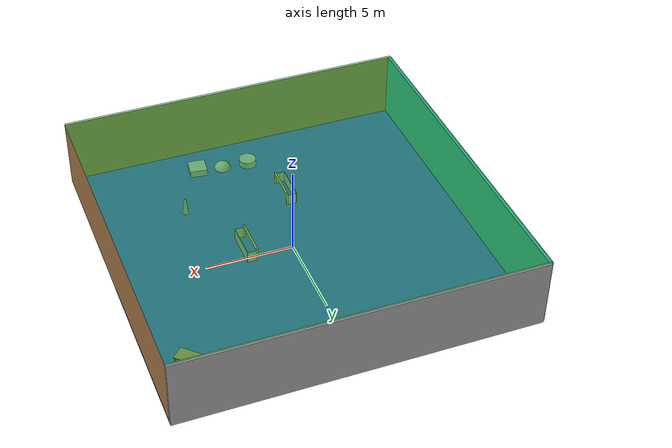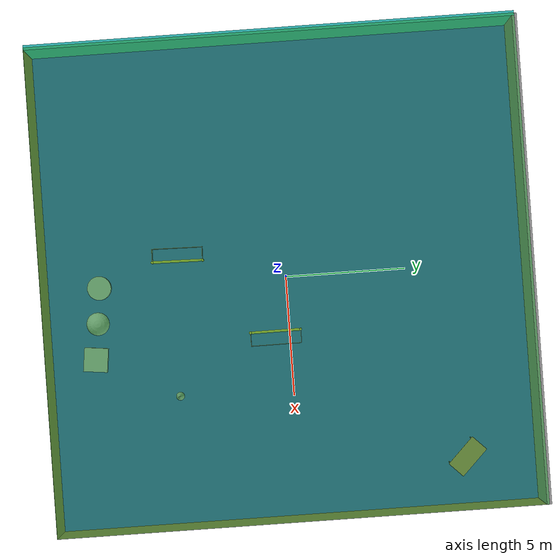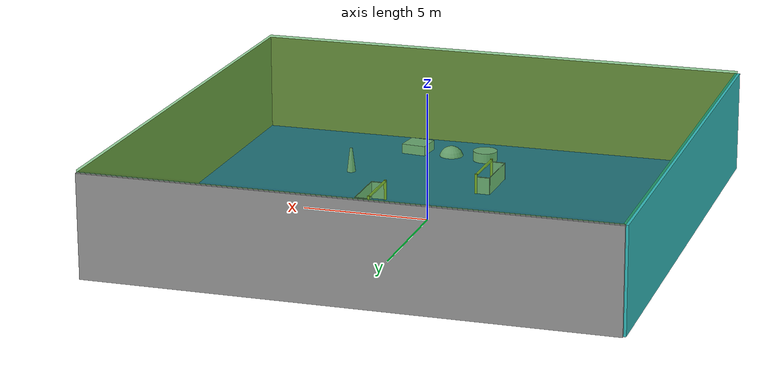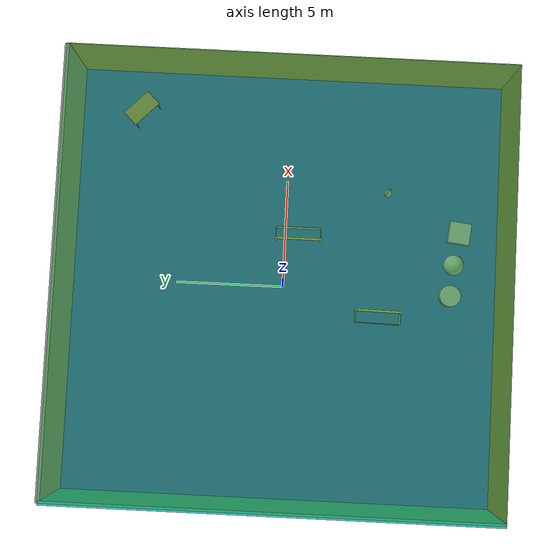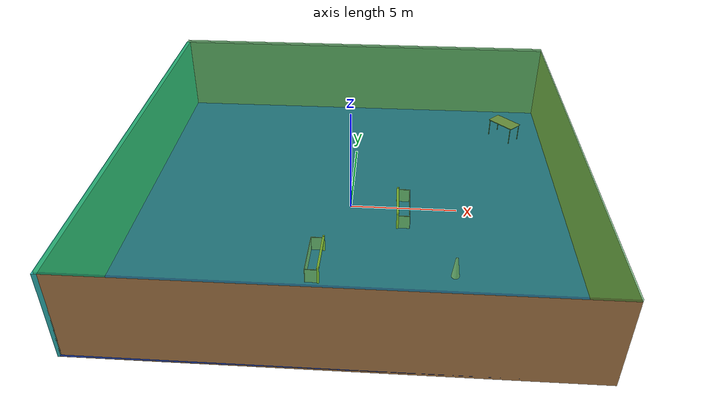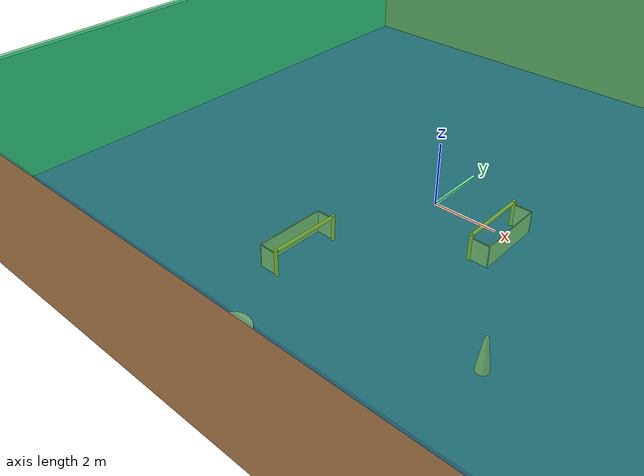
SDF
<sdf version="1.4">
 <world name="default">
  <physics type="ode">
   <max_step_size>0.001</max_step_size>
   <real_time_factor>1</real_time_factor>
   <real_time_update_rate>1000</real_time_update_rate>
   <gravity>0 0 -9.8</gravity>
  </physics>
  <scene><ambient>0.4 0.4 0.4 1</ambient><background>0.7 0.7 0.7 1</background><shadows>1</shadows></scene>
  <model name="Surrounding">
   <static>1</static>
   <link name="Ceiling">
    <collision name="Ceiling_Collision"><geometry><box><size>20 20 0.1</size></box></geometry></collision>
    <visual name="Ceiling_Visual">
     <geometry><box><size>20 20 0.1</size></box></geometry>
     <material>
      <script><uri>file://media/materials/scripts/gazebo.material</uri><name>Gazebo/GreenTransparent</name></script>
     </material>
    </visual>
    <pose>0 0 4.05 0 0 0</pose>
   </link>
   <link name="Wall_South">
    <collision name="Wall_South_Collision">
     <geometry><box><size>20 0 4</size></box></geometry>
     <pose>0 0 2 0 -0 0</pose>
    </collision>
    <visual name="Wall_South_Visual">
     <pose>0 0 2 0 -0 0</pose>
     <geometry><box><size>20 0 4</size></box></geometry>
     <material>
      <script><uri>file://media/materials/scripts/gazebo.material</uri><name>Gazebo/WoodFloor</name></script>
     </material>
    </visual>
    <velocity_decay><linear>0</linear><angular>0</angular></velocity_decay>
    <pose>0 -10 0 0 -0 0</pose>
   </link>
   <link name="Wall_East">
    <collision name="Wall_21_Collision">
     <geometry><box><size>20 0 4</size></box></geometry>
     <pose>0 0 2 0 -0 0</pose>
    </collision>
    <visual name="Wall_21_Visual">
     <pose>0 0 2 0 -0 0</pose>
     <geometry><box><size>20 0 4</size></box></geometry>
     <material>
      <script><uri>file://media/materials/scripts/gazebo.material</uri><name>Gazebo/WoodPallet</name></script>
     </material>
    </visual>
    <velocity_decay><linear>0</linear><angular>0</angular></velocity_decay>
    <pose>10 0 0 0 -0 1.5708</pose>
   </link>
   <link name="Wall_North">
    <collision name="Wall_22_Collision">
     <geometry><box><size>20 0.2 4</size></box></geometry>
     <pose>0 0 2 0 -0 0</pose>
    </collision>
    <visual name="Wall_22_Visual">
     <pose>0 0 2 0 -0 0</pose>
     <geometry><box><size>20 0.2 4</size></box></geometry>
     <material>
      <script><uri>file://media/materials/scripts/gazebo.material</uri><name>Gazebo/GreyGradientSky</name></script>
     </material>
    </visual>
    <velocity_decay><linear>0</linear><angular>0</angular></velocity_decay>
    <pose>0 10 0 0 -0 0</pose>
   </link>
   <link name="Wall_West">
    <collision name="Wall_23_Collision">
     <geometry><box><size>20 0.2 4</size></box></geometry>
     <pose>0 0 2 0 -0 0</pose>
    </collision>
    <visual name="Wall_23_Visual">
     <pose>0 0 2 0 -0 0</pose>
     <geometry><box><size>20 0.2 4</size></box></geometry>
     <material>
      <script>
       <uri>file://media/materials/scripts/gazebo.material</uri>
       <name>Gazebo/TurquoiseGlowOutline</name>
      </script>
     </material>
    </visual>
    <velocity_decay><linear>0</linear><angular>0</angular></velocity_decay>
    <pose>-10 0 0 0 0 -1.5708</pose>
   </link>
   <link name="Ground_link">
    <collision name="collision">
     <pose>0 0 .05 0 -0 0</pose>
     <geometry><box><size>20 20 0.1</size></box></geometry>
    </collision>
    <visual name="visual">
     <pose>0 0 .05 0 -0 0</pose>
     <geometry><box><size>20 20 0.1</size></box></geometry>
     <material>
      <script><uri>file://media/materials/scripts/gazebo.material</uri><name>Gazebo/BlueGlow</name></script>
     </material>
    </visual>
   </link>
   <static>1</static>
  </model>
  <spherical_coordinates>
   <surface_model>EARTH_WGS84</surface_model>
   <latitude_deg>0</latitude_deg>
   <longitude_deg>0</longitude_deg>
   <elevation>0</elevation>
   <heading_deg>0</heading_deg>
  </spherical_coordinates>
  <light name="lightball_0" type="diffuse">
   <diffuse>0.8 0.8 0.8 1</diffuse>
   <specular>0.2 0.2 0.2 1</specular>
   <attenuation>
    <range>100</range>
    <constant>0.7</constant>
    <linear>0.01</linear>
    <quadratic>0.001</quadratic>
   </attenuation>
   <direction>-0.5 0.1 -0.9</direction>
   <pose>-7.79787628408 4.67780269743 1.11923340378 0 0 0</pose>
  </light>
  <light name="lightball_1" type="diffuse">
   <diffuse>0.8 0.8 0.8 1</diffuse>
   <specular>0.2 0.2 0.2 1</specular>
   <attenuation>
    <range>100</range>
    <constant>0.7</constant>
    <linear>0.01</linear>
    <quadratic>0.001</quadratic>
   </attenuation>
   <direction>-0.5 0.1 -0.9</direction>
   <pose>0.0884077954945 -4.2075093108 3.29765543759 0 0 0</pose>
  </light>
  <light name="lightball_2" type="diffuse">
   <diffuse>0.8 0.8 0.8 1</diffuse>
   <specular>0.2 0.2 0.2 1</specular>
   <attenuation>
    <range>100</range>
    <constant>0.7</constant>
    <linear>0.01</linear>
    <quadratic>0.001</quadratic>
   </attenuation>
   <direction>-0.5 0.1 -0.9</direction>
   <pose>5.44001211245 5.61554661523 2.75877569489 0 0 0</pose>
  </light>
  <include>
   <uri>model://robocup_3Dsim_goal</uri>
   <pose>-0.965005388781 -4.48177311397 0 0 0 3.1224207261</pose>
  </include>
  <include>
   <uri>model://textured_shapes</uri>
   <pose>1.4162486988 -8.01059777534 0 0 0 1.45540942879</pose>
  </include>
  <include>
   <uri>model://robocup_3Dsim_goal</uri>
   <pose>2.23100708539 -0.596266643535 0 0 0 0.00416603543983</pose>
  </include>
  <include>
   <uri>model://construction_cone</uri>
   <pose>4.68303427122 -4.7693801339 0 0 0 2.11971568562</pose>
  </include>
  <include><uri>model://table</uri><pose>8.0117233527 7.02489751516 0 0 0 2.36020128633</pose></include>
 </world>
</sdf>

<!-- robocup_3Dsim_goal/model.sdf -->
<sdf version="1.5">
  <model name="robocup_3d_goal">
    <static>true</static>
    <link name="left_post">
      <pose>0 1.05 0.45 0 0 0</pose>
      <collision name="collision">
        <geometry>
          <cylinder>
            <radius>0.05</radius>
            <length>0.9</length>
          </cylinder>
        </geometry>
      </collision>
      <visual name="visual">
        <geometry>
          <cylinder>
            <radius>0.05</radius>
            <length>0.9</length>
          </cylinder>
        </geometry>
        <material>
          <script>
            <uri>file://media/materials/scripts/gazebo.material</uri>
            <name>Gazebo/ZincYellow</name>
          </script>
        </material>
      </visual>
    </link>
    <link name="left_support_horiz_lower">
      <pose>0.30 1.05 0.01 0 0 0</pose>
      <collision name="collision">
        <geometry>
          <box>
            <size>0.50 0.02 0.02</size>
          </box>
        </geometry>
      </collision>
      <visual name="visual">
        <geometry>
          <box>
            <size>0.50 0.02 0.02</size>
          </box>
        </geometry>
        <material>
          <script>
            <uri>file://media/materials/scripts/gazebo.material</uri>
            <name>Gazebo/White</name>
          </script>
        </material>
      </visual>
    </link>
    <link name="left_support_horiz_upper">
      <pose>0.30 1.05 0.79 0 0 0</pose>
      <collision name="collision">
        <geometry>
          <box>
            <size>0.50 0.02 0.02</size>
          </box>
        </geometry>
      </collision>
      <visual name="visual">
        <geometry>
          <box>
            <size>0.50 0.02 0.02</size>
          </box>
        </geometry>
        <material>
          <script>
            <uri>file://media/materials/scripts/gazebo.material</uri>
            <name>Gazebo/White</name>
          </script>
        </material>
      </visual>
    </link>
    <link name="left_support_vertical">
      <pose>0.56 1.05 0.4 0 1.5708 0</pose>
      <collision name="collision">
        <geometry>
          <box>
            <size>0.80 0.02 0.02</size>
          </box>
        </geometry>
      </collision>
      <visual name="visual">
        <geometry>
          <box>
            <size>0.80 0.02 0.02</size>
          </box>
        </geometry>
        <material>
          <script>
            <uri>file://media/materials/scripts/gazebo.material</uri>
            <name>Gazebo/White</name>
          </script>
        </material>
      </visual>
    </link>
    <link name="right_support_horiz_lower">
      <pose>0.30 -1.05 0.01 0 0 0</pose>
      <collision name="collision">
        <geometry>
          <box>
            <size>0.50 0.02 0.02</size>
          </box>
        </geometry>
      </collision>
      <visual name="visual">
        <geometry>
          <box>
            <size>0.50 0.02 0.02</size>
          </box>
        </geometry>
        <material>
          <script>
            <uri>file://media/materials/scripts/gazebo.material</uri>
            <name>Gazebo/White</name>
          </script>
        </material>
      </visual>
    </link>
    <link name="right_support_horiz_upper">
      <pose>0.30 -1.05 0.79 0 0 0</pose>
      <collision name="collision">
        <geometry>
          <box>
            <size>0.50 0.02 0.02</size>
          </box>
        </geometry>
      </collision>
      <visual name="visual">
        <geometry>
          <box>
            <size>0.50 0.02 0.02</size>
          </box>
        </geometry>
        <material>
          <script>
            <uri>file://media/materials/scripts/gazebo.material</uri>
            <name>Gazebo/White</name>
          </script>
        </material>
      </visual>
    </link>
    <link name="right_support_vertical">
      <pose>0.56 -1.05 0.4 0 1.5708 0</pose>
      <collision name="collision">
        <geometry>
          <box>
            <size>0.80 0.02 0.02</size>
          </box>
        </geometry>
      </collision>
      <visual name="visual">
        <geometry>
          <box>
            <size>0.80 0.02 0.02</size>
          </box>
        </geometry>
        <material>
          <script>
            <uri>file://media/materials/scripts/gazebo.material</uri>
            <name>Gazebo/White</name>
          </script>
        </material>
      </visual>
    </link>
    <link name="center_support_horiz_lower">
      <pose>0.56 0 0.01 0 1.5708 0</pose>
      <collision name="collision">
        <geometry>
          <box>
            <size>0.02 2.08 0.02</size>
          </box>
        </geometry>
      </collision>
      <visual name="visual">
        <geometry>
          <box>
            <size>0.02 2.08 0.02</size>
          </box>
        </geometry>
        <material>
          <script>
            <uri>file://media/materials/scripts/gazebo.material</uri>
            <name>Gazebo/White</name>
          </script>
        </material>
      </visual>
    </link>
    <link name="center_support_horiz_upper">
      <pose>0.56 0 0.79 0 1.5708 0</pose>
      <collision name="collision">
        <geometry>
          <box>
            <size>0.02 2.08 0.02</size>
          </box>
        </geometry>
      </collision>
      <visual name="visual">
        <geometry>
          <box>
            <size>0.02 2.08 0.02</size>
          </box>
        </geometry>
        <material>
          <script>
            <uri>file://media/materials/scripts/gazebo.material</uri>
            <name>Gazebo/White</name>
          </script>
        </material>
      </visual>
    </link>
    <link name="right_post">
      <pose>0 -1.05 0.45 0 0 0</pose>
      <collision name="collision">
        <geometry>
          <cylinder>
            <radius>0.05</radius>
            <length>0.9</length>
          </cylinder>
        </geometry>
      </collision>
      <visual name="visual">
        <geometry>
          <cylinder>
            <radius>0.05</radius>
            <length>0.9</length>
          </cylinder>
        </geometry>
        <material>
          <script>
            <uri>file://media/materials/scripts/gazebo.material</uri>
            <name>Gazebo/ZincYellow</name>
          </script>
        </material>
      </visual>
    </link>
    <link name="crossbar">
      <pose>0 0 0.85 1.57 1.57 0</pose>
      <collision name="collision">
        <geometry>
          <cylinder>
            <radius>0.05</radius>
            <length>2.0</length>
          </cylinder>
        </geometry>
      </collision>
      <visual name="visual">
        <geometry>
          <cylinder>
            <radius>0.05</radius>
            <length>2.0</length>
          </cylinder>
        </geometry>
        <material>
          <script>
            <uri>file://media/materials/scripts/gazebo.material</uri>
            <name>Gazebo/ZincYellow</name>
          </script>
        </material>
      </visual>
    </link>
    <link name="center_net">
      <pose>0.56 0 0.40 0 0 0</pose>
      <collision name="collision">
        <geometry>
          <box>
            <size>0.01 2.1 0.80</size>
          </box>
        </geometry>
      </collision>
      <visual name="visual">
        <geometry>
          <box>
            <size>0.01 2.1 0.80</size>
          </box>
        </geometry>
        <material>
          <script>
            <uri>model://../model_source/models/robocup09_spl_field/materials/scripts/</uri>
            <uri>model://../model_source/models/robocup09_spl_field/materials/textures/</uri>
            <name>RoboCup/Net</name>
          </script>
        </material>
      </visual>
    </link>
    <link name="left_net">
      <pose>0.30 1.05 0.40 0 0 0</pose>
      <collision name="collision">
        <geometry>
          <box>
            <size>0.50 0.01 0.76</size>
          </box>
        </geometry>
      </collision>
      <visual name="visual">
        <geometry>
          <box>
            <size>0.50 0.01 0.76</size>
          </box>
        </geometry>
        <material>
          <script>
            <uri>model://../model_source/models/robocup09_spl_field/materials/scripts/</uri>
            <uri>model://../model_source/models/robocup09_spl_field/materials/textures/</uri>
            <name>RoboCup/Net</name>
          </script>
        </material>
      </visual>
    </link>
    <link name="right_net">
      <pose>0.30 -1.05 0.40 0 0 0</pose>
      <collision name="collision">
        <geometry>
          <box>
            <size>0.50 0.01 0.76</size>
          </box>
        </geometry>
      </collision>
      <visual name="visual">
        <geometry>
          <box>
            <size>0.50 0.01 0.76</size>
          </box>
        </geometry>
        <material>
          <script>
            <uri>model://../model_source/models/robocup09_spl_field/materials/scripts/</uri>
            <uri>model://../model_source/models/robocup09_spl_field/materials/textures/</uri>
            <name>RoboCup/Net</name>
          </script>
        </material>
      </visual>
    </link>
  </model>
</sdf>

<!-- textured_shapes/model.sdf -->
<sdf version="1.6">
  <model name="textured_shapes">
    <pose>0 0 0.5 0 0 0</pose>
    <link name="box">
      <pose>0 -1.5 0 0 0 0</pose>
      <collision name="collision">
        <geometry>
          <box>
            <size>1 1 1</size>
          </box>
        </geometry>
      </collision>
      <visual name="visual">
        <geometry>
          <box>
            <size>1 1 1</size>
          </box>
        </geometry>
        <material>
          <script>
            <uri>model://../model_source/models/textured_shapes/materials/scripts</uri>
            <uri>model://../model_source/models/textured_shapes/materials/textures</uri>
            <name>TexturedShape/Squares</name>
          </script>
        </material>
      </visual>
    </link>
    <link name="sphere">
      <collision name="collision">
        <geometry>
          <sphere>
            <radius>0.5</radius>
          </sphere>
        </geometry>
      </collision>
      <visual name="visual">
        <geometry>
          <sphere>
            <radius>0.5</radius>
          </sphere>
        </geometry>
        <material>
          <script>
            <uri>model://../model_source/models/textured_shapes/materials/scripts</uri>
            <uri>model://../model_source/models/textured_shapes/materials/textures</uri>
            <name>TexturedShape/Squares</name>
          </script>
        </material>
      </visual>
    </link>
    <link name="cylinder">
      <pose>0 1.5 0 0 0 0</pose>
      <collision name="collision">
        <geometry>
          <cylinder>
            <radius>0.5</radius>
            <length>1</length>
          </cylinder>
        </geometry>
      </collision>
      <visual name="visual">
        <geometry>
          <cylinder>
            <radius>0.5</radius>
            <length>1</length>
          </cylinder>
        </geometry>
        <material>
          <script>
            <uri>model://../model_source/models/textured_shapes/materials/scripts</uri>
            <uri>model://../model_source/models/textured_shapes/materials/textures</uri>
            <name>TexturedShape/Squares</name>
          </script>
        </material>
      </visual>
    </link>
  </model>
</sdf>

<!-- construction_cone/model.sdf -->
<sdf version="1.5">
  <model name="Construction Cone">
    <link name="link">
      <collision name="collision">
        <geometry>
          <mesh>
            <scale>10 10 10</scale>
            <uri>file://isr-testbed/construction_cone/meshes/construction_cone.dae</uri>
          </mesh>
        </geometry>
      </collision>
      <visual name="visual">
        <geometry>
          <mesh>
            <scale>10 10 10</scale>
            <uri>file://isr-testbed/construction_cone/meshes/construction_cone.dae</uri>
          </mesh>
        </geometry>
      </visual>
    </link>
  </model>
</sdf>

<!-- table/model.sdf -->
<sdf version="1.5">
  <model name="table">
    <static>true</static>
    <link name="link">
      <collision name="surface">
        <pose>0 0 1.0 0 0 0</pose>
        <geometry>
          <box>
            <size>1.5 0.8 0.03</size>
          </box>
        </geometry>
        <surface>
          <friction>
            <ode>
              <mu>0.6</mu>
              <mu2>0.6</mu2>
            </ode>
          </friction>
        </surface>
      </collision>
      <visual name="visual1">
        <pose>0 0 1.0 0 0 0</pose>
        <geometry>
          <box>
            <size>1.5 0.8 0.03</size>
          </box>
        </geometry>
        <material>
          <script>
            <uri>model://media/materials/scripts/gazebo.material</uri>
            <name>Gazebo/Wood</name>
          </script>
        </material>
      </visual>
      <collision name="front_left_leg">
        <pose>0.68 0.38 0.5 0 0 0</pose>
        <geometry>
          <cylinder>
            <radius>0.02</radius>
            <length>1.0</length>
          </cylinder>
        </geometry>
      </collision>
      <visual name="front_left_leg">
        <pose>0.68 0.38 0.5 0 0 0</pose>
        <geometry>
          <cylinder>
            <radius>0.02</radius>
            <length>1.0</length>
          </cylinder>
        </geometry>
        <material>
          <script>
            <uri>model://media/materials/scripts/gazebo.material</uri>
            <name>Gazebo/Grey</name>
          </script>
        </material>
      </visual>
      <collision name="front_right_leg">
        <pose>0.68 -0.38 0.5 0 0 0</pose>
        <geometry>
          <cylinder>
            <radius>0.02</radius>
            <length>1.0</length>
          </cylinder>
        </geometry>
      </collision>
      <visual name="front_right_leg">
        <pose>0.68 -0.38 0.5 0 0 0</pose>
        <geometry>
          <cylinder>
            <radius>0.02</radius>
            <length>1.0</length>
          </cylinder>
        </geometry>
        <material>
          <script>
            <uri>model://media/materials/scripts/gazebo.material</uri>
            <name>Gazebo/Grey</name>
          </script>
        </material>
      </visual>
      <collision name="back_right_leg">
        <pose>-0.68 -0.38 0.5 0 0 0</pose>
        <geometry>
          <cylinder>
            <radius>0.02</radius>
            <length>1.0</length>
          </cylinder>
        </geometry>
      </collision>
      <visual name="back_right_leg">
        <pose>-0.68 -0.38 0.5 0 0 0</pose>
        <geometry>
          <cylinder>
            <radius>0.02</radius>
            <length>1.0</length>
          </cylinder>
        </geometry>
        <material>
          <script>
            <uri>model://media/materials/scripts/gazebo.material</uri>
            <name>Gazebo/Grey</name>
          </script>
        </material>
      </visual>
      <collision name="back_left_leg">
        <pose>-0.68 0.38 0.5 0 0 0</pose>
        <geometry>
          <cylinder>
            <radius>0.02</radius>
            <length>1.0</length>
          </cylinder>
        </geometry>
      </collision>
      <visual name="back_left_leg">
        <pose>-0.68 0.38 0.5 0 0 0</pose>
        <geometry>
          <cylinder>
            <radius>0.02</radius>
            <length>1.0</length>
          </cylinder>
        </geometry>
        <material>
          <script>
            <uri>model://media/materials/scripts/gazebo.material</uri>
            <name>Gazebo/Grey</name>
          </script>
        </material>
      </visual>
    </link>
  </model>
</sdf>
